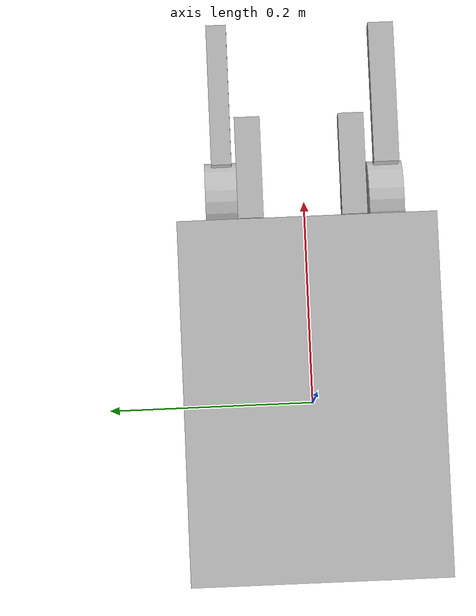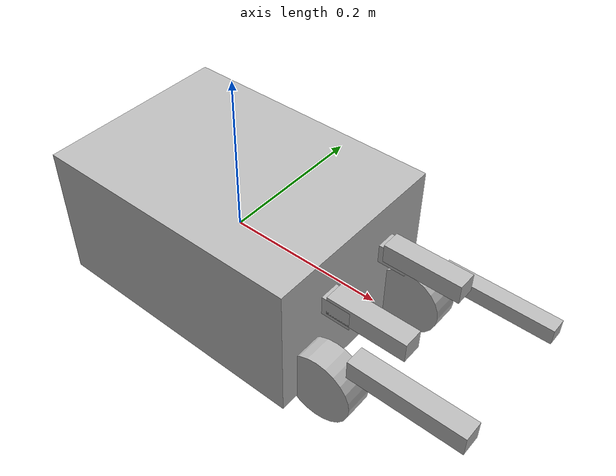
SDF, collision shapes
<sdf version='1.7'>
  <model name='wheel_leg_robot'>
    <link name='base_link'>
      <inertial>
        <pose>0 0 0 0 -0 0</pose>
        <mass>2</mass>
        <inertia>
          <ixx>0.01</ixx>
          <ixy>0</ixy>
          <ixz>0</ixz>
          <iyy>0.01</iyy>
          <iyz>0</iyz>
          <izz>0.01</izz>
        </inertia>
      </inertial>
      <collision name='base_link_collision'>
        <pose>0 0 0 0 -0 0</pose>
        <geometry>
          <box>
            <size>0.35 0.25 0.18</size>
          </box>
        </geometry>
      </collision>
      <visual name='base_link_visual'>
        <pose>0 0 0 0 1.5708 0</pose>
        <geometry>
          <mesh>
            <scale>0.001 0.001 0.001</scale>
            <uri>file:///home/hby/foot_ws/src/wheel_leg_description/meshes/visual/shell_and_big_motor.stl</uri>
          </mesh>
        </geometry>
      </visual>
    </link>
    <joint name='big_arm_1_joint' type='revolute'>
      <pose relative_to='base_link'>0.231306 0.053564 0.030643 0 -0 0</pose>
      <parent>base_link</parent>
      <child>big_arm_1_link</child>
      <axis>
        <xyz>0 1 0</xyz>
        <limit>
          <lower>-2.6</lower>
          <upper>2.6</upper>
          <effort>0</effort>
          <velocity>20</velocity>
        </limit>
        <dynamics>
          <damping>0.15</damping>
          <friction>0.02</friction>
          <spring_reference>0</spring_reference>
          <spring_stiffness>0</spring_stiffness>
        </dynamics>
      </axis>
    </joint>
    <link name='big_arm_1_link'>
      <pose relative_to='big_arm_1_joint'>0 0 0 0 -0 0</pose>
      <inertial>
        <pose>0 0 0 0 -0 0</pose>
        <mass>0.2</mass>
        <inertia>
          <ixx>0.0005</ixx>
          <ixy>0</ixy>
          <ixz>0</ixz>
          <iyy>0.0005</iyy>
          <iyz>0</iyz>
          <izz>0.0005</izz>
        </inertia>
      </inertial>
      <collision name='big_arm_1_link_collision'>
        <pose>0 0 0 0 -0 0</pose>
        <geometry>
          <box>
            <size>0.1 0.025 0.025</size>
          </box>
        </geometry>
      </collision>
      <visual name='big_arm_1_link_visual'>
        <pose>-0.231306 -0.053564 -0.030643 0 1.5708 0</pose>
        <geometry>
          <mesh>
            <scale>0.001 0.001 0.001</scale>
            <uri>file:///home/hby/foot_ws/src/wheel_leg_description/meshes/visual/big_arm_1.stl</uri>
          </mesh>
        </geometry>
      </visual>
    </link>
    <joint name='knee_1_joint' type='revolute'>
      <pose relative_to='big_arm_1_link'>0.074699 -0.137 -0.028637 0 -0 0</pose>
      <parent>big_arm_1_link</parent>
      <child>small_leg_wheel_2_link</child>
      <axis>
        <xyz>0 1 0</xyz>
        <limit>
          <lower>-2.6</lower>
          <upper>2.6</upper>
          <effort>0</effort>
          <velocity>20</velocity>
        </limit>
        <dynamics>
          <damping>0.15</damping>
          <friction>0.02</friction>
          <spring_reference>0</spring_reference>
          <spring_stiffness>0</spring_stiffness>
        </dynamics>
      </axis>
    </joint>
    <link name='small_leg_wheel_2_link'>
      <pose relative_to='knee_1_joint'>0 0 0 0 -0 0</pose>
      <inertial>
        <pose>0 0 0 0 -0 0</pose>
        <mass>0.25</mass>
        <inertia>
          <ixx>0.0008</ixx>
          <ixy>0</ixy>
          <ixz>0</ixz>
          <iyy>0.0008</iyy>
          <iyz>0</iyz>
          <izz>0.0008</izz>
        </inertia>
      </inertial>
      <collision name='small_leg_wheel_2_link_collision'>
        <pose>0 0 0 0 -0 0</pose>
        <geometry>
          <box>
            <size>0.14 0.025 0.025</size>
          </box>
        </geometry>
      </collision>
      <visual name='small_leg_wheel_2_link_visual'>
        <pose>-0.306005 0.083436 -0.002006 0 1.5708 0</pose>
        <geometry>
          <mesh>
            <scale>0.001 0.001 0.001</scale>
            <uri>file:///home/hby/foot_ws/src/wheel_leg_description/meshes/visual/small_leg_wheel_2.stl</uri>
          </mesh>
        </geometry>
      </visual>
    </link>
    <joint name='wheel_2_joint' type='revolute'>
      <pose relative_to='small_leg_wheel_2_link'>-0.104798 0 -0.058459 0 -0 0</pose>
      <parent>small_leg_wheel_2_link</parent>
      <child>wheel_motor_2_link</child>
      <axis>
        <xyz>0 1 0</xyz>
        <limit>
          <lower>-1e+16</lower>
          <upper>1e+16</upper>
        </limit>
        <dynamics>
          <damping>0.02</damping>
          <friction>0.005</friction>
          <spring_reference>0</spring_reference>
          <spring_stiffness>0</spring_stiffness>
        </dynamics>
      </axis>
    </joint>
    <link name='wheel_motor_2_link'>
      <pose relative_to='wheel_2_joint'>0 0 0 0 -0 0</pose>
      <inertial>
        <pose>0 0 0 0 -0 0</pose>
        <mass>0.5</mass>
        <inertia>
          <ixx>0.001</ixx>
          <ixy>0</ixy>
          <ixz>0</ixz>
          <iyy>0.001</iyy>
          <iyz>0</iyz>
          <izz>0.001</izz>
        </inertia>
      </inertial>
      <collision name='wheel_motor_2_link_collision'>
        <pose>0 0 0 1.5708 -0 0</pose>
        <geometry>
          <cylinder>
            <length>0.035</length>
            <radius>0.045</radius>
          </cylinder>
        </geometry>
        <surface>
          <contact>
            <ode>
              <kp>1e+06</kp>
              <kd>10</kd>
            </ode>
          </contact>
          <friction>
            <ode>
              <mu>1.5</mu>
              <mu2>1.5</mu2>
            </ode>
          </friction>
        </surface>
      </collision>
      <visual name='wheel_motor_2_link_visual'>
        <pose>-0.201207 0.083436 0.056453 0 1.5708 0</pose>
        <geometry>
          <mesh>
            <scale>0.001 0.001 0.001</scale>
            <uri>file:///home/hby/foot_ws/src/wheel_leg_description/meshes/visual/wheel_motor_2.stl</uri>
          </mesh>
        </geometry>
      </visual>
    </link>
    <joint name='big_arm_2_joint' type='revolute'>
      <pose relative_to='base_link'>0.16144 0.053564 0.026313 0 -0 0</pose>
      <parent>base_link</parent>
      <child>big_arm_2_link</child>
      <axis>
        <xyz>0 1 0</xyz>
        <limit>
          <lower>-2.6</lower>
          <upper>2.6</upper>
          <effort>0</effort>
          <velocity>20</velocity>
        </limit>
        <dynamics>
          <damping>0.15</damping>
          <friction>0.02</friction>
          <spring_reference>0</spring_reference>
          <spring_stiffness>0</spring_stiffness>
        </dynamics>
      </axis>
    </joint>
    <link name='big_arm_2_link'>
      <pose relative_to='big_arm_2_joint'>0 0 0 0 -0 0</pose>
      <inertial>
        <pose>0 0 0 0 -0 0</pose>
        <mass>0.2</mass>
        <inertia>
          <ixx>0.0005</ixx>
          <ixy>0</ixy>
          <ixz>0</ixz>
          <iyy>0.0005</iyy>
          <iyz>0</iyz>
          <izz>0.0005</izz>
        </inertia>
      </inertial>
      <collision name='big_arm_2_link_collision'>
        <pose>0 0 0 0 -0 0</pose>
        <geometry>
          <box>
            <size>0.1 0.025 0.025</size>
          </box>
        </geometry>
      </collision>
      <visual name='big_arm_2_link_visual'>
        <pose>-0.16144 -0.053564 -0.026313 0 1.5708 0</pose>
        <geometry>
          <mesh>
            <scale>0.001 0.001 0.001</scale>
            <uri>file:///home/hby/foot_ws/src/wheel_leg_description/meshes/visual/big_arm_2.stl</uri>
          </mesh>
        </geometry>
      </visual>
    </link>
    <joint name='knee_2_joint' type='revolute'>
      <pose relative_to='big_arm_2_link'>-0.070141 0.035 -0.038473 0 -0 0</pose>
      <parent>big_arm_2_link</parent>
      <child>small_leg_wheel_1_link</child>
      <axis>
        <xyz>0 1 0</xyz>
        <limit>
          <lower>-2.6</lower>
          <upper>2.6</upper>
          <effort>0</effort>
          <velocity>20</velocity>
        </limit>
        <dynamics>
          <damping>0.15</damping>
          <friction>0.02</friction>
          <spring_reference>0</spring_reference>
          <spring_stiffness>0</spring_stiffness>
        </dynamics>
      </axis>
    </joint>
    <link name='small_leg_wheel_1_link'>
      <pose relative_to='knee_2_joint'>0 0 0 0 -0 0</pose>
      <inertial>
        <pose>0 0 0 0 -0 0</pose>
        <mass>0.25</mass>
        <inertia>
          <ixx>0.0008</ixx>
          <ixy>0</ixy>
          <ixz>0</ixz>
          <iyy>0.0008</iyy>
          <iyz>0</iyz>
          <izz>0.0008</izz>
        </inertia>
      </inertial>
      <collision name='small_leg_wheel_1_link_collision'>
        <pose>0 0 0 0 -0 0</pose>
        <geometry>
          <box>
            <size>0.14 0.025 0.025</size>
          </box>
        </geometry>
      </collision>
      <visual name='small_leg_wheel_1_link_visual'>
        <pose>-0.091299 -0.088564 0.01216 0 1.5708 0</pose>
        <geometry>
          <mesh>
            <scale>0.001 0.001 0.001</scale>
            <uri>file:///home/hby/foot_ws/src/wheel_leg_description/meshes/visual/small_leg_wheel_1.stl</uri>
          </mesh>
        </geometry>
      </visual>
    </link>
    <joint name='wheel_1_joint' type='revolute'>
      <pose relative_to='small_leg_wheel_1_link'>0.113521 -0.008 -0.038897 0 -0 0</pose>
      <parent>small_leg_wheel_1_link</parent>
      <child>wheel_motor_1_link</child>
      <axis>
        <xyz>0 1 0</xyz>
        <limit>
          <lower>-1e+16</lower>
          <upper>1e+16</upper>
        </limit>
        <dynamics>
          <damping>0.02</damping>
          <friction>0.005</friction>
          <spring_reference>0</spring_reference>
          <spring_stiffness>0</spring_stiffness>
        </dynamics>
      </axis>
    </joint>
    <link name='wheel_motor_1_link'>
      <pose relative_to='wheel_1_joint'>0 0 0 0 -0 0</pose>
      <inertial>
        <pose>0 0 0 0 -0 0</pose>
        <mass>0.5</mass>
        <inertia>
          <ixx>0.001</ixx>
          <ixy>0</ixy>
          <ixz>0</ixz>
          <iyy>0.001</iyy>
          <iyz>0</iyz>
          <izz>0.001</izz>
        </inertia>
      </inertial>
      <collision name='wheel_motor_1_link_collision'>
        <pose>0 0 0 1.5708 -0 0</pose>
        <geometry>
          <cylinder>
            <length>0.035</length>
            <radius>0.045</radius>
          </cylinder>
        </geometry>
        <surface>
          <contact>
            <ode>
              <kp>1e+06</kp>
              <kd>10</kd>
            </ode>
          </contact>
          <friction>
            <ode>
              <mu>1.5</mu>
              <mu2>1.5</mu2>
            </ode>
          </friction>
        </surface>
      </collision>
      <visual name='wheel_motor_1_link_visual'>
        <pose>-0.20482 -0.080564 0.051057 0 1.5708 0</pose>
        <geometry>
          <mesh>
            <scale>0.001 0.001 0.001</scale>
            <uri>file:///home/hby/foot_ws/src/wheel_leg_description/meshes/visual/wheel_motor_1.stl</uri>
          </mesh>
        </geometry>
      </visual>
    </link>
    <joint name='big_arm_3_joint' type='revolute'>
      <pose relative_to='base_link'>0.231306 -0.048436 0.030643 0 -0 0</pose>
      <parent>base_link</parent>
      <child>big_arm_3_link</child>
      <axis>
        <xyz>0 1 0</xyz>
        <limit>
          <lower>-2.6</lower>
          <upper>2.6</upper>
          <effort>0</effort>
          <velocity>20</velocity>
        </limit>
        <dynamics>
          <damping>0.15</damping>
          <friction>0.02</friction>
          <spring_reference>0</spring_reference>
          <spring_stiffness>0</spring_stiffness>
        </dynamics>
      </axis>
    </joint>
    <link name='big_arm_3_link'>
      <pose relative_to='big_arm_3_joint'>0 0 0 0 -0 0</pose>
      <inertial>
        <pose>0 0 0 0 -0 0</pose>
        <mass>0.2</mass>
        <inertia>
          <ixx>0.0005</ixx>
          <ixy>0</ixy>
          <ixz>0</ixz>
          <iyy>0.0005</iyy>
          <iyz>0</iyz>
          <izz>0.0005</izz>
        </inertia>
      </inertial>
      <collision name='big_arm_3_link_collision'>
        <pose>0 0 0 0 -0 0</pose>
        <geometry>
          <box>
            <size>0.1 0.025 0.025</size>
          </box>
        </geometry>
      </collision>
      <visual name='big_arm_3_link_visual'>
        <pose>-0.231306 0.048436 -0.030643 0 1.5708 0</pose>
        <geometry>
          <mesh>
            <scale>0.001 0.001 0.001</scale>
            <uri>file:///home/hby/foot_ws/src/wheel_leg_description/meshes/visual/big_arm_3.stl</uri>
          </mesh>
        </geometry>
      </visual>
    </link>
    <joint name='knee_3_joint' type='revolute'>
      <pose relative_to='big_arm_3_link'>0.077142 0.129 -0.021192 0 -0 0</pose>
      <parent>big_arm_3_link</parent>
      <child>small_leggy_1_link</child>
      <axis>
        <xyz>0 1 0</xyz>
        <limit>
          <lower>-2.6</lower>
          <upper>2.6</upper>
          <effort>0</effort>
          <velocity>20</velocity>
        </limit>
        <dynamics>
          <damping>0.15</damping>
          <friction>0.02</friction>
          <spring_reference>0</spring_reference>
          <spring_stiffness>0</spring_stiffness>
        </dynamics>
      </axis>
    </joint>
    <link name='small_leggy_1_link'>
      <pose relative_to='knee_3_joint'>0 0 0 0 -0 0</pose>
      <inertial>
        <pose>0 0 0 0 -0 0</pose>
        <mass>0.15</mass>
        <inertia>
          <ixx>0.0004</ixx>
          <ixy>0</ixy>
          <ixz>0</ixz>
          <iyy>0.0004</iyy>
          <iyz>0</iyz>
          <izz>0.0004</izz>
        </inertia>
      </inertial>
      <collision name='small_leggy_1_link_collision'>
        <pose>0 0 0 0 -0 0</pose>
        <geometry>
          <box>
            <size>0.14 0.02 0.02</size>
          </box>
        </geometry>
      </collision>
      <visual name='small_leggy_1_link_visual'>
        <pose>-0.308448 -0.080564 -0.009451 0 1.5708 0</pose>
        <geometry>
          <mesh>
            <scale>0.001 0.001 0.001</scale>
            <uri>file:///home/hby/foot_ws/src/wheel_leg_description/meshes/visual/small_leggy_1.stl</uri>
          </mesh>
        </geometry>
      </visual>
    </link>
    <joint name='big_arm_4_joint' type='revolute'>
      <pose relative_to='base_link'>0.16144 -0.048436 0.026313 0 -0 0</pose>
      <parent>base_link</parent>
      <child>big_arm_4_link</child>
      <axis>
        <xyz>0 1 0</xyz>
        <limit>
          <lower>-2.6</lower>
          <upper>2.6</upper>
          <effort>0</effort>
          <velocity>20</velocity>
        </limit>
        <dynamics>
          <damping>0.15</damping>
          <friction>0.02</friction>
          <spring_reference>0</spring_reference>
          <spring_stiffness>0</spring_stiffness>
        </dynamics>
      </axis>
    </joint>
    <link name='big_arm_4_link'>
      <pose relative_to='big_arm_4_joint'>0 0 0 0 -0 0</pose>
      <inertial>
        <pose>0 0 0 0 -0 0</pose>
        <mass>0.2</mass>
        <inertia>
          <ixx>0.0005</ixx>
          <ixy>0</ixy>
          <ixz>0</ixz>
          <iyy>0.0005</iyy>
          <iyz>0</iyz>
          <izz>0.0005</izz>
        </inertia>
      </inertial>
      <collision name='big_arm_4_link_collision'>
        <pose>0 0 0 0 -0 0</pose>
        <geometry>
          <box>
            <size>0.1 0.025 0.025</size>
          </box>
        </geometry>
      </collision>
      <visual name='big_arm_4_link_visual'>
        <pose>-0.16144 0.048436 -0.026313 0 1.5708 0</pose>
        <geometry>
          <mesh>
            <scale>0.001 0.001 0.001</scale>
            <uri>file:///home/hby/foot_ws/src/wheel_leg_description/meshes/visual/big_arm_4.stl</uri>
          </mesh>
        </geometry>
      </visual>
    </link>
    <joint name='knee_4_joint' type='revolute'>
      <pose relative_to='big_arm_4_link'>-0.071059 -0.027 -0.03675 0 -0 0</pose>
      <parent>big_arm_4_link</parent>
      <child>small_leggy_2_link</child>
      <axis>
        <xyz>0 1 0</xyz>
        <limit>
          <lower>-2.6</lower>
          <upper>2.6</upper>
          <effort>0</effort>
          <velocity>20</velocity>
        </limit>
        <dynamics>
          <damping>0.15</damping>
          <friction>0.02</friction>
          <spring_reference>0</spring_reference>
          <spring_stiffness>0</spring_stiffness>
        </dynamics>
      </axis>
    </joint>
    <link name='small_leggy_2_link'>
      <pose relative_to='knee_4_joint'>0 0 0 0 -0 0</pose>
      <inertial>
        <pose>0 0 0 0 -0 0</pose>
        <mass>0.15</mass>
        <inertia>
          <ixx>0.0004</ixx>
          <ixy>0</ixy>
          <ixz>0</ixz>
          <iyy>0.0004</iyy>
          <iyz>0</iyz>
          <izz>0.0004</izz>
        </inertia>
      </inertial>
      <collision name='small_leggy_2_link_collision'>
        <pose>0 0 0 0 -0 0</pose>
        <geometry>
          <box>
            <size>0.14 0.02 0.02</size>
          </box>
        </geometry>
      </collision>
      <visual name='small_leggy_2_link_visual'>
        <pose>-0.090381 0.075436 0.010437 0 1.5708 0</pose>
        <geometry>
          <mesh>
            <scale>0.001 0.001 0.001</scale>
            <uri>file:///home/hby/foot_ws/src/wheel_leg_description/meshes/visual/small_leggy_2.stl</uri>
          </mesh>
        </geometry>
      </visual>
    </link>

    <!-- ================= Closed-loop constraints ================= -->

    <joint name="close_loop_leg_1_joint" type="revolute">
      <parent>small_leggy_1_link</parent>
      <child>wheel_motor_1_link</child>
      <axis>
        <xyz>0 1 0</xyz>
        <limit>
          <lower>-6.28318</lower>
          <upper>6.28318</upper>
        </limit>
        <dynamics>
          <damping>0.03</damping>
          <friction>0.005</friction>
        </dynamics>
      </axis>
    </joint>

    <joint name="close_loop_leg_2_joint" type="revolute">
      <parent>small_leggy_2_link</parent>
      <child>wheel_motor_2_link</child>
      <axis>
        <xyz>0 1 0</xyz>
        <limit>
          <lower>-6.28318</lower>
          <upper>6.28318</upper>
        </limit>
        <dynamics>
          <damping>0.03</damping>
          <friction>0.005</friction>
        </dynamics>
      </axis>
    </joint>

  </model>
</sdf>
